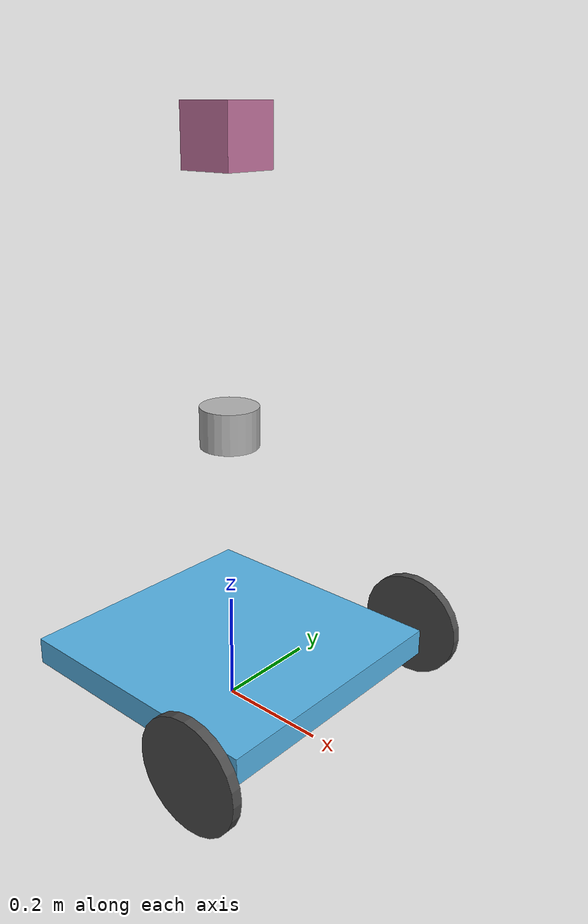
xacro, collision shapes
<?xml version="1.0"?>
<robot xmlns:xacro="http://www.ros.org/wiki/xacro" name="robot_simulation">
  <xacro:arg name="gpu" default="false"/>
  <xacro:property name="gpu" value="$(arg gpu)" />
  <xacro:arg name="organize_cloud" default="false"/>
  <xacro:property name="organize_cloud" value="$(arg organize_cloud)" />
  <material name="black">
        <color rgba="0.0 0.0 0.0 1.0"/>
    </material>

    <material name="dark">
      <color rgba="0.3 0.3 0.3 1.0"/>
    </material>
  <!-- Base Footprint -->
  <link name="base_footprint" />

  <!-- Base Link -->
  <joint name="footprint" type="fixed" >
   <parent link="base_footprint"/>
    <child link="base_link" />
    <origin xyz="0 0 0.1" rpy="0 0 0" />
  </joint>
  <link name="base_link" >
    <visual>
      <geometry>
        <box size="0.5 0.5 0.05" />
      </geometry>
    </visual>
    <collision>
      <geometry>
        <box size="0.5 0.5 0.05" />
      </geometry>

    </collision>
    <inertial>
      <origin xyz="0 0 0"/>
      <mass value="10"/>
      <inertia ixx="3.0" ixy="0.0" ixz="0.0"
               iyy="3.0" iyz="0.0"
               izz="3.0" />
    </inertial>
  </link>

<joint name="wheel_left_joint" type="continuous">
    <parent link="base_link"/>
    <child link="wheel_left_link"/>
    <origin xyz="0.2 0.3 0.0" rpy="-1.57 0 0"/>
    <axis xyz="0 0 1"/>
  </joint>

  <link name="wheel_left_link">
    <visual>
      <origin xyz="0 0 0" rpy="1.57 0 0"/>
      <geometry>
        <mesh filename="package://velodyne_description/meshes/wheels/left_tire.stl" scale="0.003 0.003 0.003"/>
      </geometry>
      <material name="dark"/>
    </visual>

    <collision>
      <origin xyz="0 0 0" rpy="0 0 0"/>
      <geometry>
        <cylinder length="0.018" radius="0.1"/>
      </geometry>
    </collision>

    <inertial>
      <origin xyz="0 0 0" />
      <mass value="2.8498940e-02" />
      <inertia ixx="1.1175580e-05" ixy="-4.2369783e-11" ixz="-5.9381719e-09"
               iyy="1.1192413e-05" iyz="-1.4400107e-11"
               izz="2.0712558e-05" />
      </inertial>
  </link>

  <joint name="wheel_right_joint" type="continuous">
    <parent link="base_link"/>
    <child link="wheel_right_link"/>
    <origin xyz="0.2 -0.3 0.0" rpy="-1.57 0 0"/>
    <axis xyz="0 0 1"/>
  </joint>

  <link name="wheel_right_link">
    <visual>
      <origin xyz="0 0 0" rpy="1.57 0 0"/>
      <geometry>
        <mesh filename="package://velodyne_description/meshes/wheels/right_tire.stl" scale="0.003 0.003 0.003"/>
      </geometry>
      <material name="dark"/>
    </visual>

    <collision>
      <origin xyz="0 0 0" rpy="0 0 0"/>
      <geometry>
        <cylinder length="0.018" radius="0.1"/>
      </geometry>
    </collision>

    <inertial>
      <origin xyz="0 0 0" />
      <mass value="2.8498940e-02" />
      <inertia ixx="1.1175580e-05" ixy="-4.2369783e-11" ixz="-5.9381719e-09"
               iyy="1.1192413e-05" iyz="-1.4400107e-11"
               izz="2.0712558e-05" />
      </inertial>
  </link>

  <joint name="caster_back_right_joint" type="fixed">
    <parent link="base_link"/>
    <child link="caster_back_right_link"/>
    <origin xyz="-0.2 -0.064 -0.1" rpy="-1.57 0 0"/>
  </joint>

  <link name="caster_back_right_link">
    <collision>
      <origin xyz="0 0.001 0" rpy="0 0 0"/>
      <geometry>
        <box size="0.050 0.009 0.06"/>
      </geometry>
    </collision>

    <inertial>
      <origin xyz="0 0 0" />
      <mass value="0.005" />
      <inertia ixx="0.001" ixy="0.0" ixz="0.0"
               iyy="0.001" iyz="0.0"
               izz="0.001" />
    </inertial>
  </link>
  <gazebo reference="caster_back_right_link">
      <mu1>0</mu1>
      <mu2>0</mu2>
  </gazebo>

  <joint name="caster_back_left_joint" type="fixed">
    <parent link="base_link"/>
    <child link="caster_back_left_link"/>
    <origin xyz="-0.2 0.064 -0.1" rpy="-1.57 0 0"/>
  </joint>

  <link name="caster_back_left_link">
    <collision>
      <origin xyz="0 0.001 0" rpy="0 0 0"/>
      <geometry>
        <box size="0.050 0.009 0.06"/>
      </geometry>
    </collision>

    <inertial>
      <origin xyz="0 0 0" />
      <mass value="0.005" />
      <inertia ixx="0.001" ixy="0.0" ixz="0.0"
               iyy="0.001" iyz="0.0"
               izz="0.001" />
    </inertial>
  </link>

<joint name="camera_joint" type="fixed">
    <axis xyz="0 1 0" />
    <origin xyz="0 0 1" rpy="0 0 0"/>
    <parent link="base_footprint"/>
    <child link="camera_link"/>
  </joint>

  <link name="camera_link">
    <collision>
      <origin xyz="0 0 0" rpy="0 0 0"/>
      <geometry>
    <box size="0.1 0.1 0.1"/>
      </geometry>
    </collision>

    <visual>
      <origin xyz="0 0 0" rpy="0 0 0"/>
      <geometry>
    <box size="0.1 0.1 0.1"/>
      </geometry>
    </visual>

    <inertial>
      <mass value="1e-5" />
      <origin xyz="0 0 0" rpy="0 0 0"/>
      <inertia ixx="1e-6" ixy="0" ixz="0" iyy="1e-6" iyz="0" izz="1e-6" />
    </inertial>
  </link>

  <gazebo reference="caster_back_left_link">
      <mu1>0</mu1>
      <mu2>0</mu2>
  </gazebo>

    <gazebo>
      <plugin name="velodyne_controller" filename="libgazebo_ros_diff_drive.so">
        <commandTopic>cmd_vel</commandTopic>
        <robotBaseFrame>base_footprint</robotBaseFrame>
        <odometryTopic>odom</odometryTopic>
        <odometryFrame>odom</odometryFrame>
        <odometrySource>1</odometrySource>
        <publishOdom>true</publishOdom>
        <publishOdomTF>true</publishOdomTF>
        <robotBaseFrame>base_footprint</robotBaseFrame>
        <publishWheelTF>true</publishWheelTF>
        <publishWheelJointState>true</publishWheelJointState>
        <publishTf>true</publishTf>
        <legacyMode>false</legacyMode>
        <updateRate>50</updateRate>
        <leftJoint>wheel_left_joint</leftJoint>
        <rightJoint>wheel_right_joint</rightJoint>
        <wheelSeparation>0.160</wheelSeparation>
        <wheelDiameter>0.066</wheelDiameter>
        <wheelAcceleration>1</wheelAcceleration>
        <wheelTorque>10</wheelTorque>
        <rosDebugLevel>na</rosDebugLevel>
      </plugin>
    </gazebo>

<gazebo reference="camera_link">
    <sensor type="camera" name="camera1">
      <update_rate>20.0</update_rate>
      <camera name="head">
        <horizontal_fov>1.3962634</horizontal_fov>
        <image>
          <width>800</width>
          <height>800</height>
          <format>R8G8B8</format>
        </image>
        <clip>
          <near>0.02</near>
          <far>300</far>
        </clip>
        <noise>
          <type>gaussian</type>

          <mean>0.0</mean>
          <stddev>0.007</stddev>
        </noise>
      </camera>
      <plugin name="camera_controller" filename="libgazebo_ros_camera.so">
        <alwaysOn>true</alwaysOn>
        <updateRate>0.0</updateRate>
        <cameraName>rrbot/camera1</cameraName>
        <imageTopicName>image_raw</imageTopicName>
        <cameraInfoTopicName>camera_info</cameraInfoTopicName>
        <frameName>camera_link</frameName>
        <hackBaseline>0.07</hackBaseline>
        <distortionK1>0.0</distortionK1>
        <distortionK2>0.0</distortionK2>
        <distortionK3>0.0</distortionK3>
        <distortionT1>0.0</distortionT1>
        <distortionT2>0.0</distortionT2>
      </plugin>
    </sensor>
  </gazebo>

  <xacro:include filename="$(find velodyne_description)/urdf/VLP-16.urdf.xacro"/>
  <xacro:VLP-16 parent="base_link" name="velodyne" topic="/velodyne_points" organize_cloud="${organize_cloud}" hz="10" samples="440" gpu="${gpu}">
    <origin xyz="0 0 0.4" rpy="0 0 0" />
  </xacro:VLP-16>

</robot>

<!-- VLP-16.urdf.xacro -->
<robot xmlns:xacro="http://www.ros.org/wiki/xacro" name="VLP-16">
  <xacro:property name="M_PI" value="3.1415926535897931" />
  <xacro:macro name="VLP-16" params="*origin is_sim:=true parent:=base_link name:=velodyne tf_prefix:='' topic:=/velodyne_points organize_cloud:=false hz:=10 lasers:=16 samples:=1875 collision_range:=0.3 min_range:=0.0 max_range:=100.0 noise:=0.008 min_angle:=-${M_PI} max_angle:=${M_PI} gpu:=false">

    <joint name="${name}_base_mount_joint" type="fixed">
      <xacro:insert_block name="origin" />
      <parent link="${parent}"/>
      <child link="${name}_base_link"/>
    </joint>

    <link name="${name}_base_link">
      <inertial>
        <mass value="0.83"/>
        <origin xyz="0 0 0.03585"/>
        <inertia ixx="${(0.83 * (3.0*0.0516*0.0516 + 0.0717*0.0717)) / 12.0}" ixy="0" ixz="0"
          iyy="${(0.83 * (3.0*0.0516*0.0516 + 0.0717*0.0717)) / 12.0}" iyz="0"
          izz="${0.5 * 0.83 * (0.0516*0.0516)}"/>
      </inertial>
      <visual>
        <geometry>
          <mesh filename="package://velodyne_description/meshes/VLP16_base_1.dae" />
        </geometry>
      </visual>
      <visual>
        <geometry>
          <mesh filename="package://velodyne_description/meshes/VLP16_base_2.dae" />
        </geometry>
      </visual>
      <collision>
        <origin rpy="0 0 0" xyz="0 0 0.03585"/>
        <geometry>
          <cylinder radius="0.0516" length="0.0717"/>
        </geometry>
      </collision>
    </link>

    <joint name="${name}_base_scan_joint" type="fixed" >
      <origin xyz="0 0 0.0377" rpy="0 0 0" />
      <parent link="${name}_base_link" />
      <child link="${name}"/>
    </joint>

    <link name="${name}">
      <inertial>
        <mass value="0.01"/>
        <origin xyz="0 0 0"/>
        <inertia ixx="1e-7" ixy="0" ixz="0" iyy="1e-7" iyz="0" izz="1e-7"/>
      </inertial>
      <visual>
        <origin xyz="0 0 -0.0377" />
        <geometry>
          <mesh filename="package://velodyne_description/meshes/VLP16_scan.dae" />
        </geometry>
      </visual>
      <collision>
        <geometry>
          <sphere radius="0"/>
        </geometry>
      </collision>
    </link>

    <!-- Gazebo requires the velodyne_gazebo_plugins package -->
    <xacro:if value="${is_sim}">
        <gazebo reference="${name}">
            <xacro:if value="${gpu}">
                <sensor type="gpu_ray" name="${name}-VLP16">
                <pose>0 0 0 0 0 0</pose>
                <visualize>false</visualize>
                <update_rate>${hz}</update_rate>
                <ray>
                    <scan>
                    <horizontal>
                        <samples>${samples}</samples>
                        <resolution>1</resolution>
                        <min_angle>${min_angle}</min_angle>
                        <max_angle>${max_angle}</max_angle>
                    </horizontal>
                    <vertical>
                        <samples>${lasers}</samples>
                        <resolution>1</resolution>
                        <min_angle>-${15.0*M_PI/180.0}</min_angle>
                        <max_angle> ${15.0*M_PI/180.0}</max_angle>
                    </vertical>
                    </scan>
                    <range>
                    <min>${collision_range}</min>
                    <max>${max_range+1}</max>
                    <resolution>0.001</resolution>
                    </range>
                    <noise>
                    <type>gaussian</type>
                    <mean>0.0</mean>
                    <stddev>0.0</stddev>
                    </noise>
                </ray>
                <plugin name="gazebo_ros_laser_controller" filename="libgazebo_ros_velodyne_laser.so">
                    <ros>
                    <namespace>/${name}</namespace>
                    <remapping>~/out:=${topic}</remapping>
                    </ros>
                    <tf_prefix>${tf_prefix}</tf_prefix>
                    <frame_name>${name}</frame_name>
                    <organize_cloud>${organize_cloud}</organize_cloud>
                    <min_range>${min_range}</min_range>
                    <max_range>${max_range}</max_range>
                    <gaussian_noise>${noise}</gaussian_noise>
                </plugin>
                </sensor>
            </xacro:if>
            <xacro:unless value="${gpu}">
                <sensor type="ray" name="${name}-VLP16">
                <pose>0 0 0 0 0 0</pose>
                <visualize>false</visualize>
                <update_rate>${hz}</update_rate>
                <ray>
                    <scan>
                    <horizontal>
                        <samples>${samples}</samples>
                        <resolution>1</resolution>
                        <min_angle>${min_angle}</min_angle>
                        <max_angle>${max_angle}</max_angle>
                    </horizontal>
                    <vertical>
                        <samples>${lasers}</samples>
                        <resolution>1</resolution>
                        <min_angle>-${15.0*M_PI/180.0}</min_angle>
                        <max_angle> ${15.0*M_PI/180.0}</max_angle>
                    </vertical>
                    </scan>
                    <range>
                    <min>${collision_range}</min>
                    <max>${max_range+1}</max>
                    <resolution>0.001</resolution>
                    </range>
                    <noise>
                    <type>gaussian</type>
                    <mean>0.0</mean>
                    <stddev>0.0</stddev>
                    </noise>
                </ray>
                <plugin name="gazebo_ros_laser_controller" filename="libgazebo_ros_velodyne_laser.so">
                    <ros>
                    <namespace>/${name}</namespace>
                    <remapping>~/out:=${topic}</remapping>
                    </ros>
                    <tf_prefix>${tf_prefix}</tf_prefix>
                    <frame_name>${name}</frame_name>
                    <organize_cloud>${organize_cloud}</organize_cloud>
                    <min_range>${min_range}</min_range>
                    <max_range>${max_range}</max_range>
                    <gaussian_noise>${noise}</gaussian_noise>
                </plugin>
                </sensor>
            </xacro:unless>
        </gazebo>
    </xacro:if>

  </xacro:macro>
</robot>
